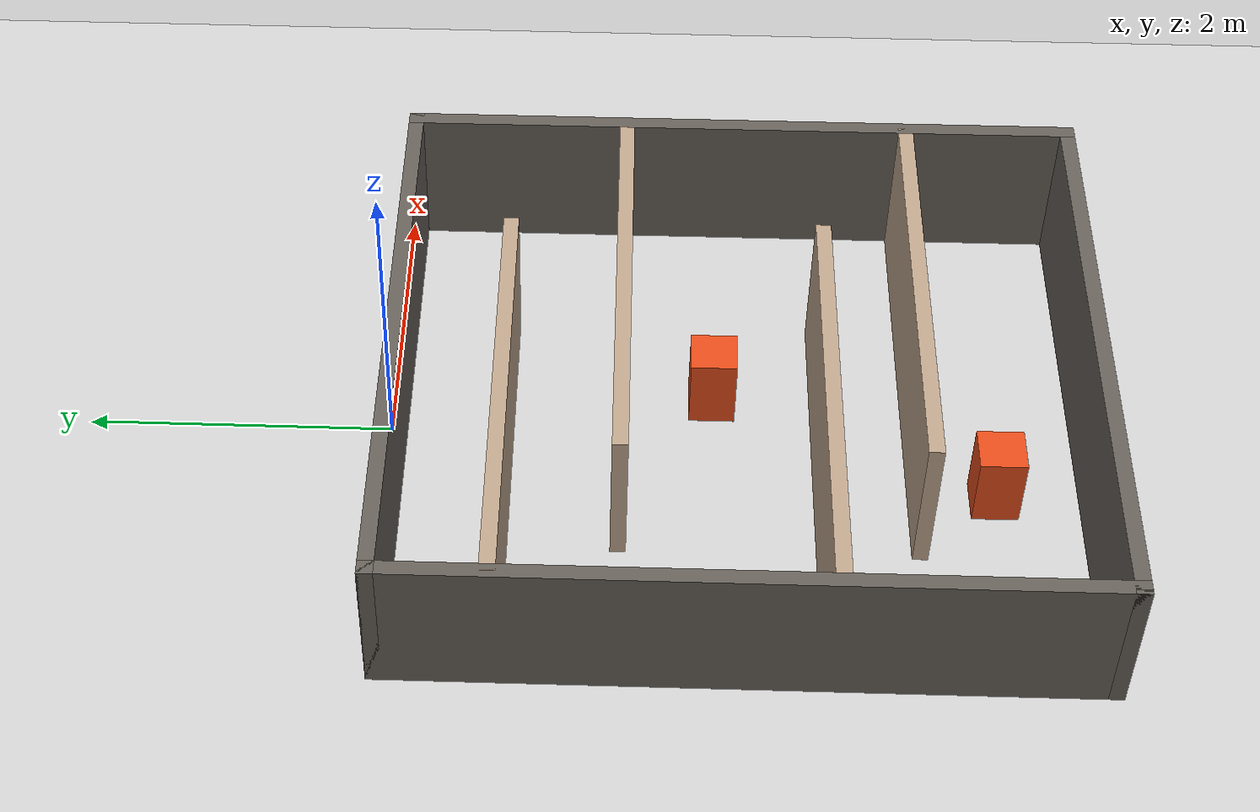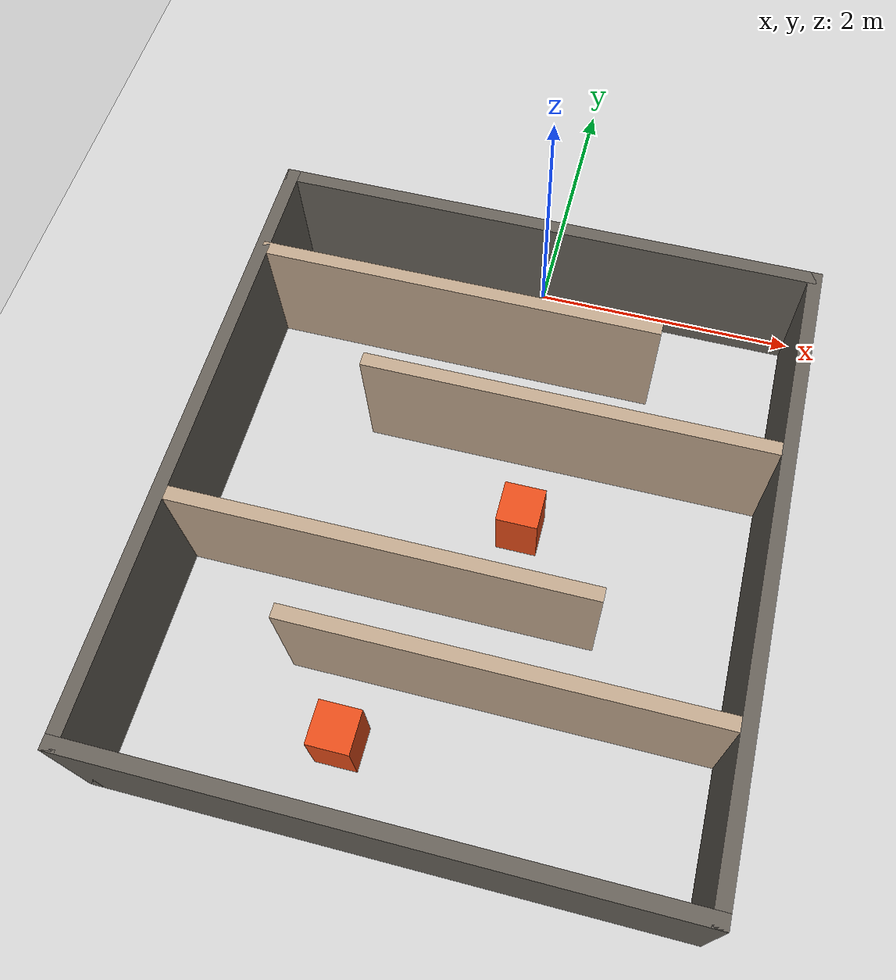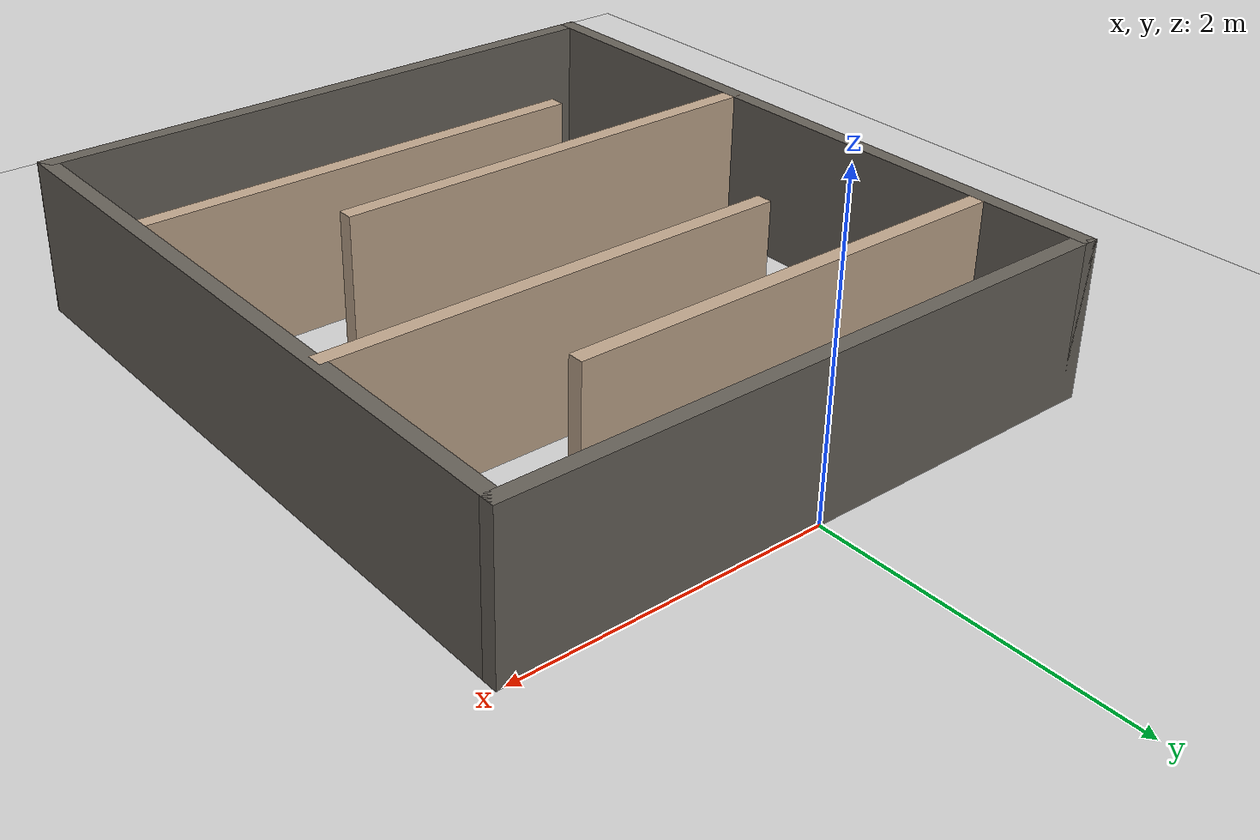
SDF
<?xml version="1.0" ?>
<!--
  Narrow Passages world — 5 zigzag corridors (0.9 m interior width).
  Shortened length to prevent LiDAR feature-starvation (corridor problem).
-->
<sdf version="1.6">
  <world name="narrow_passages_world">

    <light name="sun" type="directional">
      <cast_shadows>true</cast_shadows>
      <pose>0 0 10 0 0 0</pose>
      <diffuse>1 1 1 1</diffuse>
      <specular>0.3 0.3 0.3 1</specular>
      <direction>-0.5 0.1 -0.9</direction>
    </light>

    <physics type="ode">
      <real_time_update_rate>1000.0</real_time_update_rate>
      <max_step_size>0.001</max_step_size>
      <real_time_factor>1</real_time_factor>
    </physics>

    <!-- Ground -->
    <model name="ground_plane">
      <static>true</static>
      <link name="link">
        <collision name="c"><geometry><plane><normal>0 0 1</normal><size>20 20</size></plane></geometry></collision>
        <visual name="v"><geometry><plane><normal>0 0 1</normal><size>20 20</size></plane></geometry>
          <material><ambient>0.82 0.82 0.82 1</ambient><diffuse>0.82 0.82 0.82 1</diffuse></material></visual>
      </link>
    </model>

    <!-- Bottom boundary (y=-4.5) -->
    <model name="wall_bottom"><static>true</static><pose>0 -4.5 0.5 0 0 0</pose>
      <link name="l"><collision name="c"><geometry><box><size>4.1 0.1 1.0</size></box></geometry></collision>
        <visual name="v"><geometry><box><size>4.1 0.1 1.0</size></box></geometry>
          <material><ambient>0.40 0.38 0.35 1</ambient><diffuse>0.40 0.38 0.35 1</diffuse></material></visual>
      </link></model>

    <!-- Top boundary (y=-0.05) -->
    <model name="wall_top"><static>true</static><pose>0 -0.05 0.5 0 0 0</pose>
      <link name="l"><collision name="c"><geometry><box><size>4.1 0.1 1.0</size></box></geometry></collision>
        <visual name="v"><geometry><box><size>4.1 0.1 1.0</size></box></geometry>
          <material><ambient>0.40 0.38 0.35 1</ambient><diffuse>0.40 0.38 0.35 1</diffuse></material></visual>
      </link></model>

    <!-- West end wall (x=-2.0) -->
    <model name="wall_west"><static>true</static><pose>-2.0 -2.275 0.5 0 0 0</pose>
      <link name="l"><collision name="c"><geometry><box><size>0.1 4.55 1.0</size></box></geometry></collision>
        <visual name="v"><geometry><box><size>0.1 4.55 1.0</size></box></geometry>
          <material><ambient>0.40 0.38 0.35 1</ambient><diffuse>0.40 0.38 0.35 1</diffuse></material></visual>
      </link></model>

    <!-- East end wall (x=+2.0) -->
    <model name="wall_east"><static>true</static><pose>2.0 -2.275 0.5 0 0 0</pose>
      <link name="l"><collision name="c"><geometry><box><size>0.1 4.55 1.0</size></box></geometry></collision>
        <visual name="v"><geometry><box><size>0.1 4.55 1.0</size></box></geometry>
          <material><ambient>0.40 0.38 0.35 1</ambient><diffuse>0.40 0.38 0.35 1</diffuse></material></visual>
      </link></model>

    <!-- ── wall_A  y=-3.4  gap LEFT (x: -2.0 → -1.0)
         Creates C1 width: 1.0m -->
    <model name="wall_A"><static>true</static><pose>0.5 -3.4 0.5 0 0 0</pose>
      <link name="l"><collision name="c"><geometry><box><size>3.0 0.1 1.0</size></box></geometry></collision>
        <visual name="v"><geometry><box><size>3.0 0.1 1.0</size></box></geometry>
          <material><ambient>0.75 0.65 0.55 1</ambient><diffuse>0.75 0.65 0.55 1</diffuse></material></visual>
      </link></model>

    <!-- ── wall_B  y=-2.8  gap RIGHT (x: +1.0 → +2.0)
         Creates C2 width: 0.5m (Very Narrow) -->
    <model name="wall_B"><static>true</static><pose>-0.5 -2.8 0.5 0 0 0</pose>
      <link name="l"><collision name="c"><geometry><box><size>3.0 0.1 1.0</size></box></geometry></collision>
        <visual name="v"><geometry><box><size>3.0 0.1 1.0</size></box></geometry>
          <material><ambient>0.75 0.65 0.55 1</ambient><diffuse>0.75 0.65 0.55 1</diffuse></material></visual>
      </link></model>

    <!-- ── wall_C  y=-1.5  gap LEFT (x: -2.0 → -1.0)
         Creates C3 width: 1.2m (Wide) -->
    <model name="wall_C"><static>true</static><pose>0.5 -1.5 0.5 0 0 0</pose>
      <link name="l"><collision name="c"><geometry><box><size>3.0 0.1 1.0</size></box></geometry></collision>
        <visual name="v"><geometry><box><size>3.0 0.1 1.0</size></box></geometry>
          <material><ambient>0.75 0.65 0.55 1</ambient><diffuse>0.75 0.65 0.55 1</diffuse></material></visual>
      </link></model>

    <!-- ── wall_D  y=-0.75  gap RIGHT (x: +1.0 → +2.0)
         Creates C4 interior: 0.65m (navigable narrow) -->
    <model name="wall_D"><static>true</static><pose>-0.5 -0.75 0.5 0 0 0</pose>
      <link name="l"><collision name="c"><geometry><box><size>3.0 0.1 1.0</size></box></geometry></collision>
        <visual name="v"><geometry><box><size>3.0 0.1 1.0</size></box></geometry>
          <material><ambient>0.75 0.65 0.55 1</ambient><diffuse>0.75 0.65 0.55 1</diffuse></material></visual>
      </link></model>

    <!-- ── Dynamic obstacle 1 — lower corridor (C1), oscillates E↔W
         Starts at x=-0.5, y=-3.9.  Controller travels ±1.0 m so range
         stays well inside the x:-2.0→+2.0 boundary. -->
    <model name="dynamic_obs_1">
      <static>false</static>
      <pose>-0.5 -3.9 0.25 0 0 0</pose>
      <link name="link">
        <inertial>
          <mass>5.0</mass>
          <inertia><ixx>0.1</ixx><iyy>0.1</iyy><izz>0.1</izz><ixy>0</ixy><ixz>0</ixz><iyz>0</iyz></inertia>
        </inertial>
        <collision name="c">
          <geometry><box><size>0.30 0.30 0.50</size></box></geometry>
          <surface>
            <friction><ode><mu>0.0</mu><mu2>0.0</mu2></ode></friction>
          </surface>
        </collision>
        <visual name="v">
          <geometry><box><size>0.30 0.30 0.50</size></box></geometry>
          <material><ambient>0.9 0.3 0.1 1</ambient><diffuse>0.9 0.3 0.1 1</diffuse></material>
        </visual>
      </link>
      <plugin name="planar_move_1" filename="libgazebo_ros_planar_move.so">
        <ros>
          <remapping>cmd_vel:=/dynamic_obs_1/cmd_vel</remapping>
          <remapping>odom:=/dynamic_obs_1/odom</remapping>
        </ros>
        <update_rate>10</update_rate>
        <publish_odom>false</publish_odom>
        <publish_odom_tf>false</publish_odom_tf>
      </plugin>
    </model>

    <!-- ── Dynamic obstacle 2 — middle corridor (C3), oscillates E↔W
         Starts at x=+0.3, y=-2.1.  180° phase offset from obstacle 1. -->
    <model name="dynamic_obs_2">
      <static>false</static>
      <pose>0.3 -2.1 0.25 0 0 0</pose>
      <link name="link">
        <inertial>
          <mass>5.0</mass>
          <inertia><ixx>0.1</ixx><iyy>0.1</iyy><izz>0.1</izz><ixy>0</ixy><ixz>0</ixz><iyz>0</iyz></inertia>
        </inertial>
        <collision name="c">
          <geometry><box><size>0.30 0.30 0.50</size></box></geometry>
          <surface>
            <friction><ode><mu>0.0</mu><mu2>0.0</mu2></ode></friction>
          </surface>
        </collision>
        <visual name="v">
          <geometry><box><size>0.30 0.30 0.50</size></box></geometry>
          <material><ambient>0.9 0.3 0.1 1</ambient><diffuse>0.9 0.3 0.1 1</diffuse></material>
        </visual>
      </link>
      <plugin name="planar_move_2" filename="libgazebo_ros_planar_move.so">
        <ros>
          <remapping>cmd_vel:=/dynamic_obs_2/cmd_vel</remapping>
          <remapping>odom:=/dynamic_obs_2/odom</remapping>
        </ros>
        <update_rate>10</update_rate>
        <publish_odom>false</publish_odom>
        <publish_odom_tf>false</publish_odom_tf>
      </plugin>
    </model>

  </world>
</sdf>
